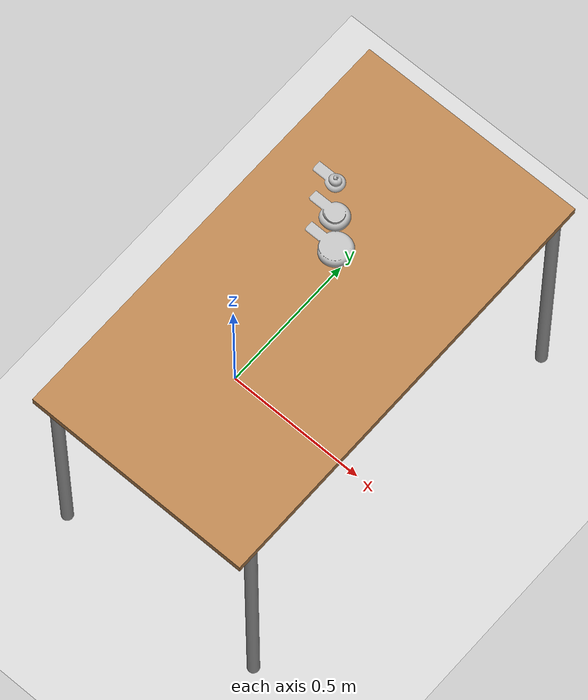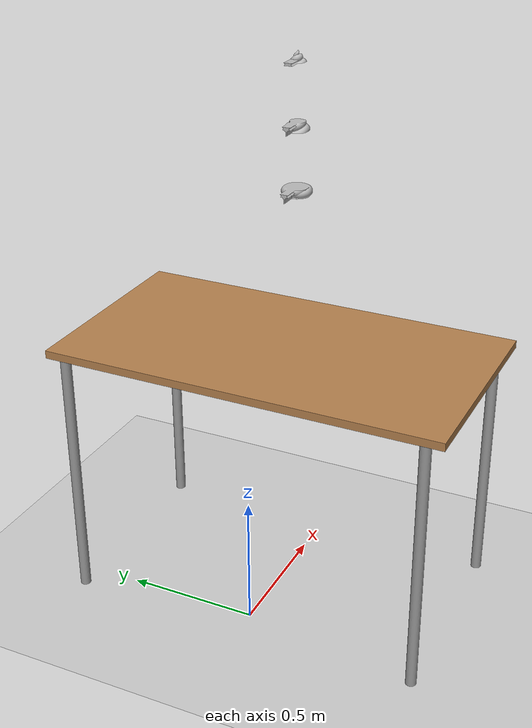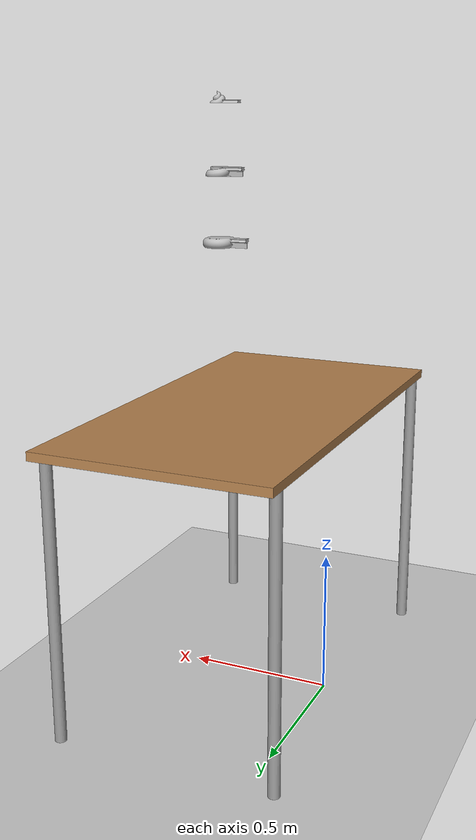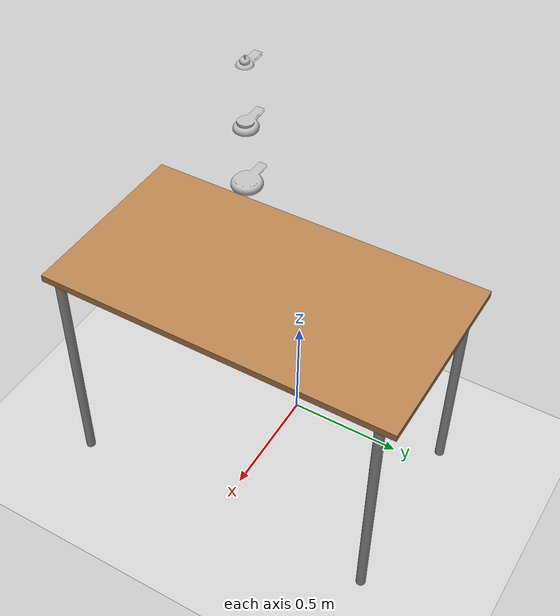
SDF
<?xml version="1.0" ?>
<sdf version="1.6">
 <world name="CRANE-X7 with Table">
  <scene>
   <shadows>0</shadows>
  </scene>

  <include>
   <uri>model://sun</uri>
  </include>

  <model name="table">
   <include>
    <uri>model://table</uri>
   </include>

   <!-- X7を机の端に配置するため、机を移動、回転する -->
   <pose>0.29 0 0 0 0 1.5708</pose>
  </model>

  <model name="poop_upper">
    <include>
      <uri>model://poop_upper</uri>
    </include>
    <scale>1 1 1</scale>
    <pose>0.4 0 1.45 0 0 -1.5708</pose>
  </model>

  <model name="poop_middle">
    <include>
      <uri>model://poop_middle</uri>
    </include>
    <scale>1 1 1</scale>
    <pose>0.4 0 1.25 0 0 -1.5708</pose>
  </model>

    <model name="poop_lower">
    <include>
      <uri>model://poop_lower</uri>
    </include>
    <scale>1 1 1</scale>
    <pose>0.4 0 1.05 0 0 -1.5708</pose>
  </model>

  <model name="ground_plane">
   <include>
    <uri>model://ground_plane</uri>
   </include>

   <joint name='ground_joint' type='fixed'>
    <parent>ground_plane::link</parent>
    <child>table::link</child>
   </joint>
  </model>

 </world>
</sdf>

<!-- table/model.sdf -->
<sdf version="1.5">
  <model name="table">
    <static>true</static>
    <link name="link">
      <collision name="surface">
        <pose>0 0 1.0 0 0 0</pose>
        <geometry>
          <box>
            <size>1.5 0.8 0.03</size>
          </box>
        </geometry>
        <surface>
          <friction>
            <ode>
              <mu>0.6</mu>
              <mu2>0.6</mu2>
            </ode>
          </friction>
        </surface>
      </collision>
      <visual name="visual1">
        <pose>0 0 1.0 0 0 0</pose>
        <geometry>
          <box>
            <size>1.5 0.8 0.03</size>
          </box>
        </geometry>
        <material>
          <script>
            <uri>model://media/materials/scripts/gazebo.material</uri>
            <name>Gazebo/Wood</name>
          </script>
        </material>
      </visual>
      <collision name="front_left_leg">
        <pose>0.68 0.38 0.5 0 0 0</pose>
        <geometry>
          <cylinder>
            <radius>0.02</radius>
            <length>1.0</length>
          </cylinder>
        </geometry>
      </collision>
      <visual name="front_left_leg">
        <pose>0.68 0.38 0.5 0 0 0</pose>
        <geometry>
          <cylinder>
            <radius>0.02</radius>
            <length>1.0</length>
          </cylinder>
        </geometry>
        <material>
          <script>
            <uri>model://media/materials/scripts/gazebo.material</uri>
            <name>Gazebo/Grey</name>
          </script>
        </material>
      </visual>
      <collision name="front_right_leg">
        <pose>0.68 -0.38 0.5 0 0 0</pose>
        <geometry>
          <cylinder>
            <radius>0.02</radius>
            <length>1.0</length>
          </cylinder>
        </geometry>
      </collision>
      <visual name="front_right_leg">
        <pose>0.68 -0.38 0.5 0 0 0</pose>
        <geometry>
          <cylinder>
            <radius>0.02</radius>
            <length>1.0</length>
          </cylinder>
        </geometry>
        <material>
          <script>
            <uri>model://media/materials/scripts/gazebo.material</uri>
            <name>Gazebo/Grey</name>
          </script>
        </material>
      </visual>
      <collision name="back_right_leg">
        <pose>-0.68 -0.38 0.5 0 0 0</pose>
        <geometry>
          <cylinder>
            <radius>0.02</radius>
            <length>1.0</length>
          </cylinder>
        </geometry>
      </collision>
      <visual name="back_right_leg">
        <pose>-0.68 -0.38 0.5 0 0 0</pose>
        <geometry>
          <cylinder>
            <radius>0.02</radius>
            <length>1.0</length>
          </cylinder>
        </geometry>
        <material>
          <script>
            <uri>model://media/materials/scripts/gazebo.material</uri>
            <name>Gazebo/Grey</name>
          </script>
        </material>
      </visual>
      <collision name="back_left_leg">
        <pose>-0.68 0.38 0.5 0 0 0</pose>
        <geometry>
          <cylinder>
            <radius>0.02</radius>
            <length>1.0</length>
          </cylinder>
        </geometry>
      </collision>
      <visual name="back_left_leg">
        <pose>-0.68 0.38 0.5 0 0 0</pose>
        <geometry>
          <cylinder>
            <radius>0.02</radius>
            <length>1.0</length>
          </cylinder>
        </geometry>
        <material>
          <script>
            <uri>model://media/materials/scripts/gazebo.material</uri>
            <name>Gazebo/Grey</name>
          </script>
        </material>
      </visual>
    </link>
  </model>
</sdf>

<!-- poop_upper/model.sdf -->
<sdf version='1.6'>
<model name ='poop_upper'>
  <pose>0 0 0.5 0 0 0</pose>
    <link name='upper_link'>
      <inertial>
        <mass>0.02</mass>
        <inertia>
          <ixx>147.491791</ixx>
          <ixy>-4.949071</ixy>
          <ixz>-0.258245</ixz>
          <iyy>10.094223</iyy>
          <iyz>-0.634677</iyz>
          <izz>153.751083</izz>
        </inertia>
      </inertial>
      <collision name='upper_colision'>
        <geometry>
          <mesh>
            <uri>model://poop_upper/poop1.dae</uri>
          </mesh>
        </geometry>
      </collision>
      <visual name='upper_visual'>
        <geometry>
          <mesh>
            <uri>model://poop_upper/poop1.dae</uri>
          </mesh>
        </geometry>
      </visual>
    </link>
  </model>
</sdf>

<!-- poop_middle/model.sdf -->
<sdf version='1.6'>
<model name ='poop_middle'>
  <pose>0 0 0.5 0 0 0</pose>
    <link name='middle_link'>
      <inertial>
        <mass>0.08</mass>
        <inertia>
          <ixx>147.491791</ixx>
          <ixy>-4.949071</ixy>
          <ixz>-0.258245</ixz>
          <iyy>10.094223</iyy>
          <iyz>-0.634677</iyz>
          <izz>153.751083</izz>
        </inertia>
      </inertial>
      <collision name='middle_colision'>
        <geometry>
          <mesh>
            <uri>model://poop_middle/poop2.dae</uri>
          </mesh>
        </geometry>
      </collision>
      <visual name='middle_visual'>
        <geometry>
          <mesh>
            <uri>model://poop_middle/poop2.dae</uri>
          </mesh>
        </geometry>
      </visual>
    </link>
  </model>
</sdf>

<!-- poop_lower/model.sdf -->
<sdf version='1.6'>
<model name ='poop_lower'>
  <pose>0 0 0.5 0 0 0</pose>
    <link name='lower_link'>
      <inertial>
        <mass>0.165</mass>
        <inertia>
          <ixx>147.491791</ixx>
          <ixy>-4.949071</ixy>
          <ixz>-0.258245</ixz>
          <iyy>10.094223</iyy>
          <iyz>-0.634677</iyz>
          <izz>153.751083</izz>
        </inertia>
      </inertial>
      <collision name='lower_colision'>
        <geometry>
          <mesh>
            <uri>model://poop_lower/poop3.dae</uri>
          </mesh>
        </geometry>
      </collision>
      <visual name='lower_visual'>
        <geometry>
          <mesh>
            <uri>model://poop_lower/poop3.dae</uri>
          </mesh>
        </geometry>
      </visual>
    </link>
  </model>
</sdf>
